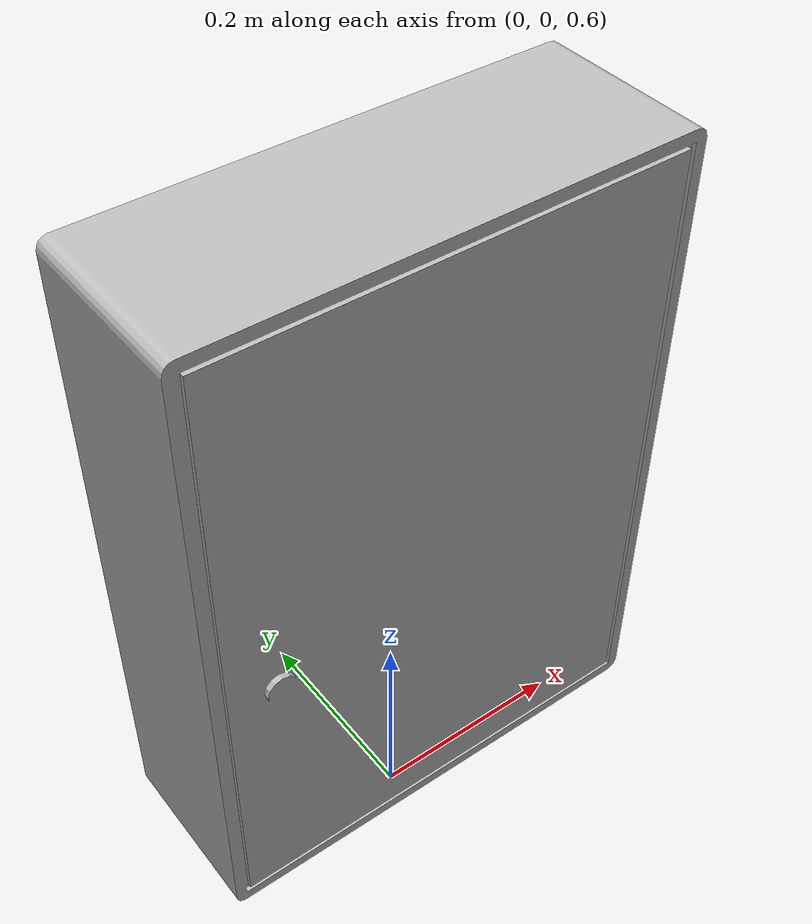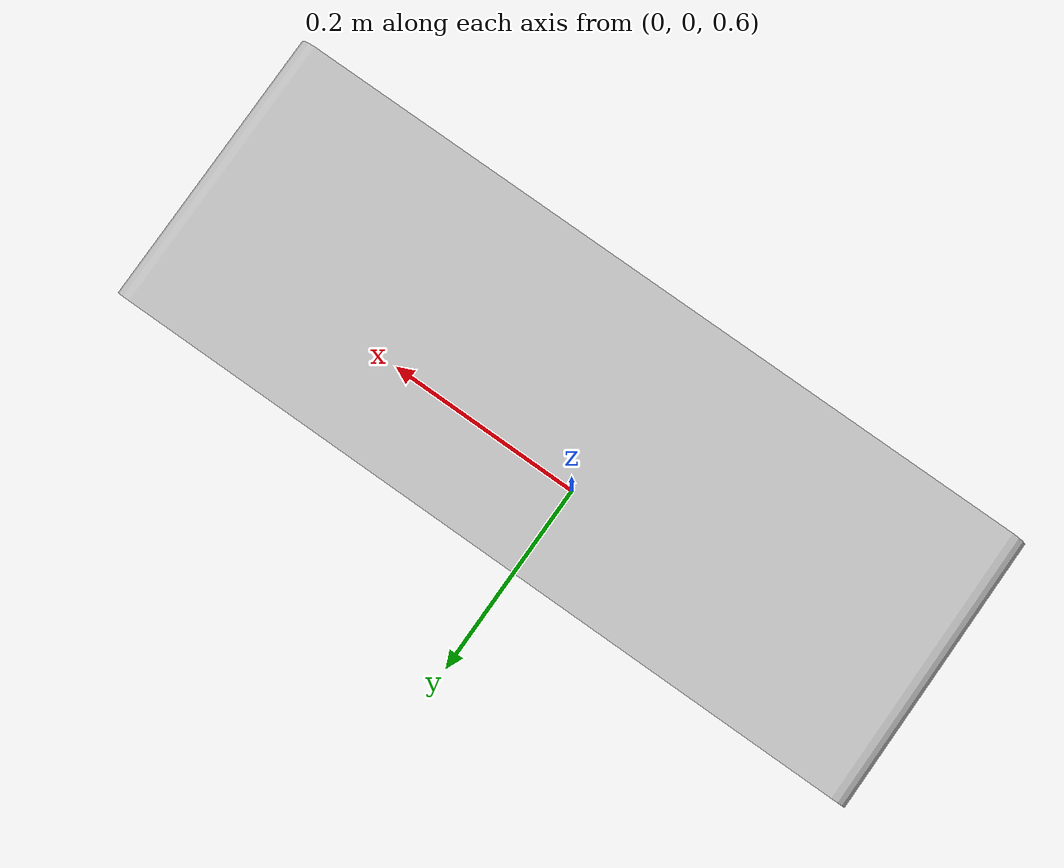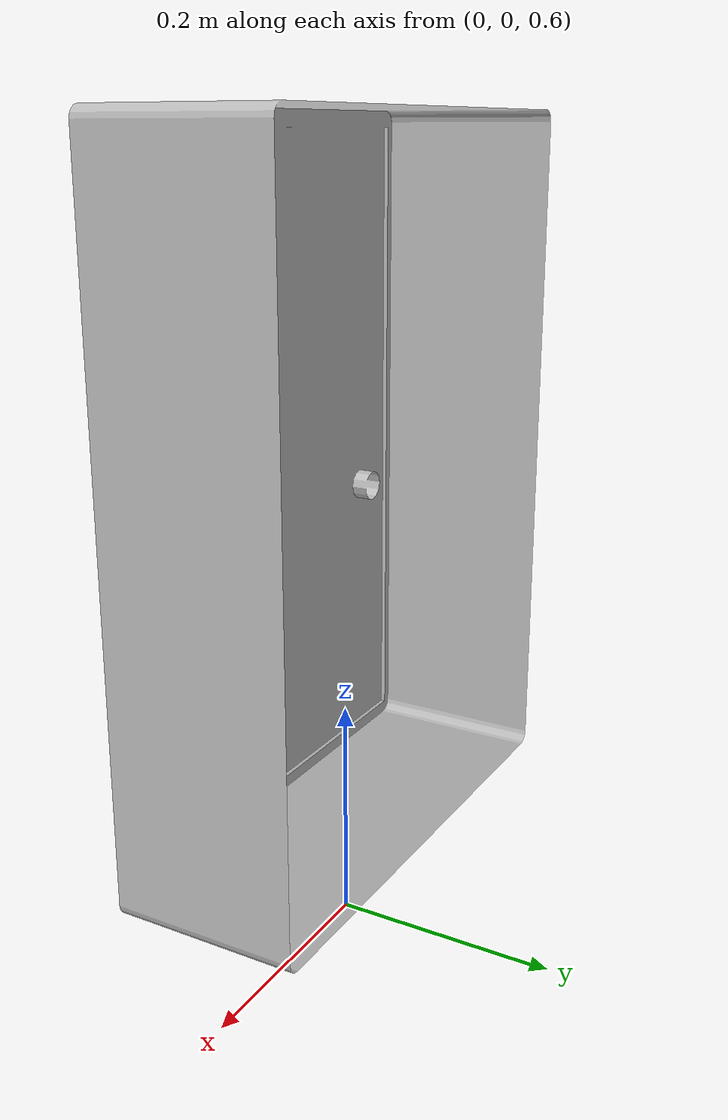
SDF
<?xml version="1.0" ?>
<sdf version="1.5">
  <model name="Painel">
    <static>true</static>
    <link name="link">
      <collision name="collision">
        <geometry>
            <mesh>
                <uri>model://painel/meshes/painel.stl</uri>
                <scale>1 1 1</scale>
            </mesh>
        </geometry>
      </collision>
      <visual name="visual">
        <geometry>
          <mesh>
            <uri>model://painel/meshes/painel.stl</uri>
            <scale>1 1 1</scale>
          </mesh>
        </geometry>
      </visual>
    </link>
    <gazebo reference="link">
      <material>Gazebo/White</material>
    </gazebo>
  </model>
</sdf>
